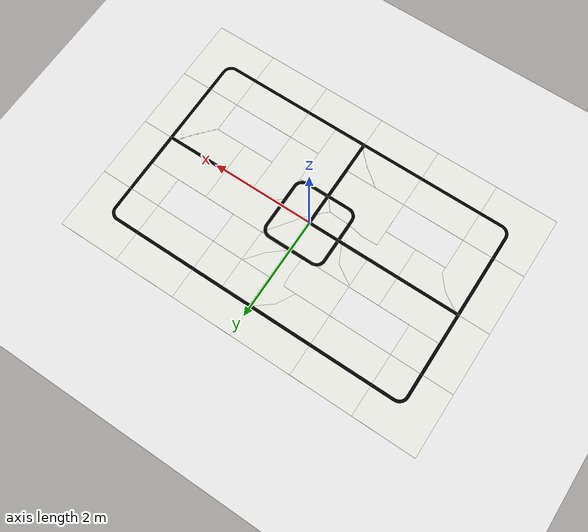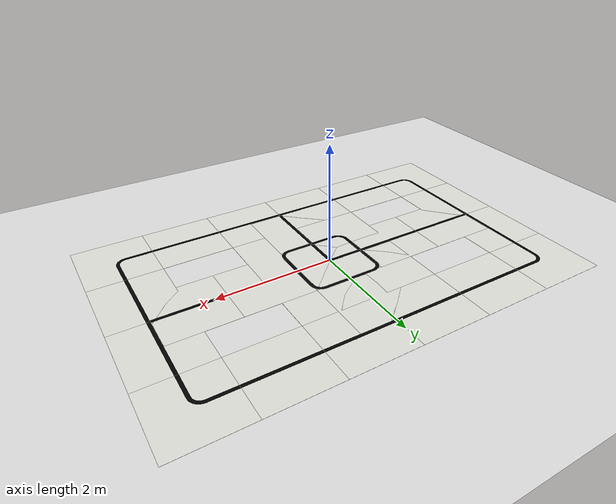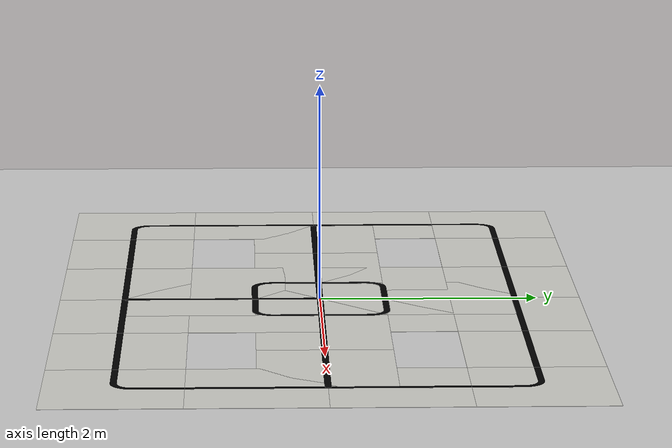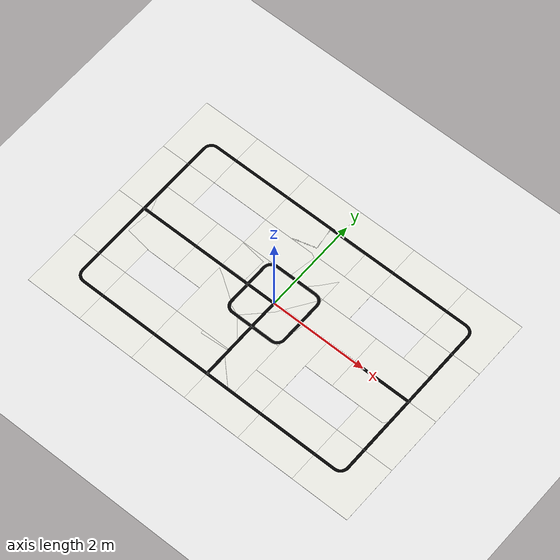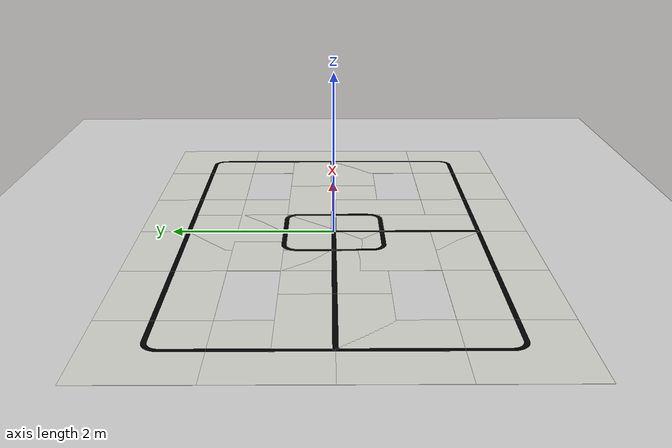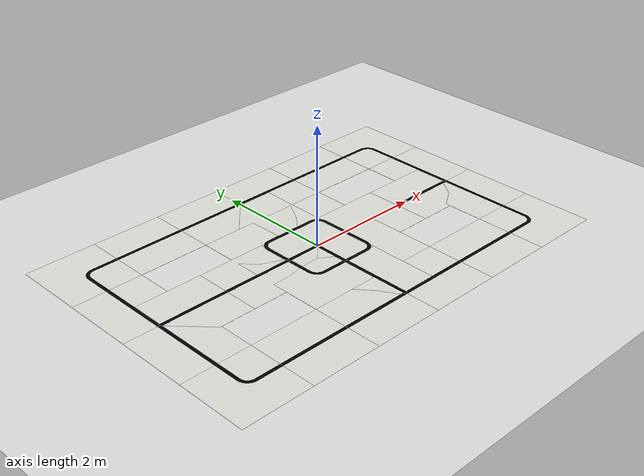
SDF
<sdf version='1.7'>
  <world name='default'>
    <!-- Iluminacao Zenital Sem Sombras (Piso Claro e Linhas Pretas de Alto Contraste) -->
    <light name='sun' type='directional'>
      <cast_shadows>0</cast_shadows>
      <pose>0 0 20 0 0 0</pose>
      <diffuse>0.95 0.95 0.95 1</diffuse>
      <specular>0.05 0.05 0.05 1</specular>
      <attenuation>
        <range>1000</range>
        <constant>0.9</constant>
        <linear>0.01</linear>
        <quadratic>0.001</quadratic>
      </attenuation>
      <direction>0 0 -1</direction>
    </light>

    <!-- Fundo Branco Total (Sky / Horizon) -->
    <scene>
      <ambient>0.95 0.95 0.95 1</ambient>
      <background>1 1 1 1</background>
      <shadows>0</shadows>
      <grid>0</grid>
    </scene>

    <!-- Chao Branco Total (Gazebo/White) para Contraste Maximo com as Linhas Pretas -->
    <model name='ground_plane'>
      <static>1</static>
      <link name='link'>
        <collision name='collision'>
          <geometry>
            <plane>
              <normal>0 0 1</normal>
              <size>200 200</size>
            </plane>
          </geometry>
          <surface>
            <contact><collide_bitmask>65535</collide_bitmask><ode/></contact>
            <friction>
              <ode><mu>100</mu><mu2>50</mu2></ode>
              <torsional><ode/></torsional>
            </friction>
            <bounce/>
          </surface>
        </collision>
        <visual name='visual'>
          <cast_shadows>0</cast_shadows>
          <geometry>
            <plane>
              <normal>0 0 1</normal>
              <size>200 200</size>
            </plane>
          </geometry>
          <material>
            <script>
              <uri>file://media/materials/scripts/gazebo.material</uri>
              <name>Gazebo/White</name>
            </script>
            <ambient>1 1 1 1</ambient>
            <diffuse>1 1 1 1</diffuse>
            <specular>0.05 0.05 0.05 1</specular>
          </material>
        </visual>
      </link>
    </model>

    <gravity>0 0 -9.8</gravity>
    <magnetic_field>6e-06 2.3e-05 -4.2e-05</magnetic_field>
    <atmosphere type='adiabatic'/>
    <physics type='ode'>
      <max_step_size>0.001</max_step_size>
      <real_time_factor>1</real_time_factor>
      <real_time_update_rate>1000</real_time_update_rate>
    </physics>
    <audio><device>none</device></audio>

    <model name='tile_top_1'>
      <static>1</static>
      <link name='link'>
        <visual name='visual'>
          <pose>0 0 0 1.5708 -0 0</pose>
          <geometry>
            <mesh>
              <uri>/workspace/tiles/tile-reta/meshes/tile_reta.dae</uri>
              <scale>4.0 1 4.0</scale>
            </mesh>
          </geometry>
        </visual>
        <collision name='collision'>
          <geometry>
            <box>
              <size>1.20 1.20 0.003</size>
            </box>
          </geometry>
          <surface>
            <contact><ode/></contact>
            <friction>
              <ode><mu>100</mu><mu2>50</mu2></ode>
              <torsional><ode/></torsional>
            </friction>
          </surface>
        </collision>
      </link>
      <pose>-2.4000 2.4000 0.0010 0.0000 0.0000 0.000000</pose>
    </model>

    <model name='tile_top_2'>
      <static>1</static>
      <link name='link'>
        <visual name='visual'>
          <pose>0 0 0 1.5708 -0 0</pose>
          <geometry>
            <mesh>
              <uri>/workspace/tiles/tile-reta/meshes/tile_reta.dae</uri>
              <scale>4.0 1 4.0</scale>
            </mesh>
          </geometry>
        </visual>
        <collision name='collision'>
          <geometry>
            <box>
              <size>1.20 1.20 0.003</size>
            </box>
          </geometry>
          <surface>
            <contact><ode/></contact>
            <friction>
              <ode><mu>100</mu><mu2>50</mu2></ode>
              <torsional><ode/></torsional>
            </friction>
          </surface>
        </collision>
      </link>
      <pose>-1.2000 2.4000 0.0010 0.0000 0.0000 0.000000</pose>
    </model>

    <model name='tile_top_3'>
      <static>1</static>
      <link name='link'>
        <visual name='visual'>
          <pose>0 0 0 1.5708 -0 0</pose>
          <geometry>
            <mesh>
              <uri>/workspace/tiles/tile-reta/meshes/tile_reta.dae</uri>
              <scale>4.0 1 4.0</scale>
            </mesh>
          </geometry>
        </visual>
        <collision name='collision'>
          <geometry>
            <box>
              <size>1.20 1.20 0.003</size>
            </box>
          </geometry>
          <surface>
            <contact><ode/></contact>
            <friction>
              <ode><mu>100</mu><mu2>50</mu2></ode>
              <torsional><ode/></torsional>
            </friction>
          </surface>
        </collision>
      </link>
      <pose>0.0000 2.4000 0.0010 0.0000 0.0000 0.000000</pose>
    </model>

    <model name='tile_top_4'>
      <static>1</static>
      <link name='link'>
        <visual name='visual'>
          <pose>0 0 0 1.5708 -0 0</pose>
          <geometry>
            <mesh>
              <uri>/workspace/tiles/tile-reta/meshes/tile_reta.dae</uri>
              <scale>4.0 1 4.0</scale>
            </mesh>
          </geometry>
        </visual>
        <collision name='collision'>
          <geometry>
            <box>
              <size>1.20 1.20 0.003</size>
            </box>
          </geometry>
          <surface>
            <contact><ode/></contact>
            <friction>
              <ode><mu>100</mu><mu2>50</mu2></ode>
              <torsional><ode/></torsional>
            </friction>
          </surface>
        </collision>
      </link>
      <pose>1.2000 2.4000 0.0010 0.0000 0.0000 0.000000</pose>
    </model>

    <model name='tile_curva_tr'>
      <static>1</static>
      <link name='link'>
        <visual name='visual'>
          <pose>0 0 0 1.5708 -0 0</pose>
          <geometry>
            <mesh>
              <uri>/workspace/tiles/tile-curva/meshes/tile_curva.dae</uri>
              <scale>4.0 1 4.0</scale>
            </mesh>
          </geometry>
        </visual>
        <collision name='collision'>
          <geometry>
            <box>
              <size>1.20 1.20 0.003</size>
            </box>
          </geometry>
          <surface>
            <contact><ode/></contact>
            <friction>
              <ode><mu>100</mu><mu2>50</mu2></ode>
              <torsional><ode/></torsional>
            </friction>
          </surface>
        </collision>
      </link>
      <pose>2.4000 2.4000 0.0010 0.0000 0.0000 0.000000</pose>
    </model>

    <model name='tile_right_1'>
      <static>1</static>
      <link name='link'>
        <visual name='visual'>
          <pose>0 0 0 1.5708 -0 0</pose>
          <geometry>
            <mesh>
              <uri>/workspace/tiles/tile-reta/meshes/tile_reta.dae</uri>
              <scale>4.0 1 4.0</scale>
            </mesh>
          </geometry>
        </visual>
        <collision name='collision'>
          <geometry>
            <box>
              <size>1.20 1.20 0.003</size>
            </box>
          </geometry>
          <surface>
            <contact><ode/></contact>
            <friction>
              <ode><mu>100</mu><mu2>50</mu2></ode>
              <torsional><ode/></torsional>
            </friction>
          </surface>
        </collision>
      </link>
      <pose>3.6000 1.2000 0.0010 0.0000 0.0000 -1.570796</pose>
    </model>

    <model name='tile_right_2'>
      <static>1</static>
      <link name='link'>
        <visual name='visual'>
          <pose>0 0 0 1.5708 -0 0</pose>
          <geometry>
            <mesh>
              <uri>/workspace/tiles/tile-reta/meshes/tile_reta.dae</uri>
              <scale>4.0 1 4.0</scale>
            </mesh>
          </geometry>
        </visual>
        <collision name='collision'>
          <geometry>
            <box>
              <size>1.20 1.20 0.003</size>
            </box>
          </geometry>
          <surface>
            <contact><ode/></contact>
            <friction>
              <ode><mu>100</mu><mu2>50</mu2></ode>
              <torsional><ode/></torsional>
            </friction>
          </surface>
        </collision>
      </link>
      <pose>3.6000 0.0000 0.0010 0.0000 0.0000 -1.570796</pose>
    </model>

    <model name='tile_curva_br'>
      <static>1</static>
      <link name='link'>
        <visual name='visual'>
          <pose>0 0 0 1.5708 -0 0</pose>
          <geometry>
            <mesh>
              <uri>/workspace/tiles/tile-curva/meshes/tile_curva.dae</uri>
              <scale>4.0 1 4.0</scale>
            </mesh>
          </geometry>
        </visual>
        <collision name='collision'>
          <geometry>
            <box>
              <size>1.20 1.20 0.003</size>
            </box>
          </geometry>
          <surface>
            <contact><ode/></contact>
            <friction>
              <ode><mu>100</mu><mu2>50</mu2></ode>
              <torsional><ode/></torsional>
            </friction>
          </surface>
        </collision>
      </link>
      <pose>3.6000 -1.2000 0.0010 0.0000 0.0000 -1.570796</pose>
    </model>

    <model name='tile_bottom_1'>
      <static>1</static>
      <link name='link'>
        <visual name='visual'>
          <pose>0 0 0 1.5708 -0 0</pose>
          <geometry>
            <mesh>
              <uri>/workspace/tiles/tile-reta/meshes/tile_reta.dae</uri>
              <scale>4.0 1 4.0</scale>
            </mesh>
          </geometry>
        </visual>
        <collision name='collision'>
          <geometry>
            <box>
              <size>1.20 1.20 0.003</size>
            </box>
          </geometry>
          <surface>
            <contact><ode/></contact>
            <friction>
              <ode><mu>100</mu><mu2>50</mu2></ode>
              <torsional><ode/></torsional>
            </friction>
          </surface>
        </collision>
      </link>
      <pose>2.4000 -2.4000 0.0010 0.0000 0.0000 3.141593</pose>
    </model>

    <model name='tile_bottom_2'>
      <static>1</static>
      <link name='link'>
        <visual name='visual'>
          <pose>0 0 0 1.5708 -0 0</pose>
          <geometry>
            <mesh>
              <uri>/workspace/tiles/tile-reta/meshes/tile_reta.dae</uri>
              <scale>4.0 1 4.0</scale>
            </mesh>
          </geometry>
        </visual>
        <collision name='collision'>
          <geometry>
            <box>
              <size>1.20 1.20 0.003</size>
            </box>
          </geometry>
          <surface>
            <contact><ode/></contact>
            <friction>
              <ode><mu>100</mu><mu2>50</mu2></ode>
              <torsional><ode/></torsional>
            </friction>
          </surface>
        </collision>
      </link>
      <pose>1.2000 -2.4000 0.0010 0.0000 0.0000 3.141593</pose>
    </model>

    <model name='tile_bottom_3'>
      <static>1</static>
      <link name='link'>
        <visual name='visual'>
          <pose>0 0 0 1.5708 -0 0</pose>
          <geometry>
            <mesh>
              <uri>/workspace/tiles/tile-reta/meshes/tile_reta.dae</uri>
              <scale>4.0 1 4.0</scale>
            </mesh>
          </geometry>
        </visual>
        <collision name='collision'>
          <geometry>
            <box>
              <size>1.20 1.20 0.003</size>
            </box>
          </geometry>
          <surface>
            <contact><ode/></contact>
            <friction>
              <ode><mu>100</mu><mu2>50</mu2></ode>
              <torsional><ode/></torsional>
            </friction>
          </surface>
        </collision>
      </link>
      <pose>0.0000 -2.4000 0.0010 0.0000 0.0000 3.141593</pose>
    </model>

    <model name='tile_bottom_4'>
      <static>1</static>
      <link name='link'>
        <visual name='visual'>
          <pose>0 0 0 1.5708 -0 0</pose>
          <geometry>
            <mesh>
              <uri>/workspace/tiles/tile-reta/meshes/tile_reta.dae</uri>
              <scale>4.0 1 4.0</scale>
            </mesh>
          </geometry>
        </visual>
        <collision name='collision'>
          <geometry>
            <box>
              <size>1.20 1.20 0.003</size>
            </box>
          </geometry>
          <surface>
            <contact><ode/></contact>
            <friction>
              <ode><mu>100</mu><mu2>50</mu2></ode>
              <torsional><ode/></torsional>
            </friction>
          </surface>
        </collision>
      </link>
      <pose>-1.2000 -2.4000 0.0010 0.0000 0.0000 3.141593</pose>
    </model>

    <model name='tile_curva_bl'>
      <static>1</static>
      <link name='link'>
        <visual name='visual'>
          <pose>0 0 0 1.5708 -0 0</pose>
          <geometry>
            <mesh>
              <uri>/workspace/tiles/tile-curva/meshes/tile_curva.dae</uri>
              <scale>4.0 1 4.0</scale>
            </mesh>
          </geometry>
        </visual>
        <collision name='collision'>
          <geometry>
            <box>
              <size>1.20 1.20 0.003</size>
            </box>
          </geometry>
          <surface>
            <contact><ode/></contact>
            <friction>
              <ode><mu>100</mu><mu2>50</mu2></ode>
              <torsional><ode/></torsional>
            </friction>
          </surface>
        </collision>
      </link>
      <pose>-2.4000 -2.4000 0.0010 0.0000 0.0000 3.141593</pose>
    </model>

    <model name='tile_left_1'>
      <static>1</static>
      <link name='link'>
        <visual name='visual'>
          <pose>0 0 0 1.5708 -0 0</pose>
          <geometry>
            <mesh>
              <uri>/workspace/tiles/tile-reta/meshes/tile_reta.dae</uri>
              <scale>4.0 1 4.0</scale>
            </mesh>
          </geometry>
        </visual>
        <collision name='collision'>
          <geometry>
            <box>
              <size>1.20 1.20 0.003</size>
            </box>
          </geometry>
          <surface>
            <contact><ode/></contact>
            <friction>
              <ode><mu>100</mu><mu2>50</mu2></ode>
              <torsional><ode/></torsional>
            </friction>
          </surface>
        </collision>
      </link>
      <pose>-3.6000 -1.2000 0.0010 0.0000 0.0000 1.570796</pose>
    </model>

    <model name='tile_left_2'>
      <static>1</static>
      <link name='link'>
        <visual name='visual'>
          <pose>0 0 0 1.5708 -0 0</pose>
          <geometry>
            <mesh>
              <uri>/workspace/tiles/tile-reta/meshes/tile_reta.dae</uri>
              <scale>4.0 1 4.0</scale>
            </mesh>
          </geometry>
        </visual>
        <collision name='collision'>
          <geometry>
            <box>
              <size>1.20 1.20 0.003</size>
            </box>
          </geometry>
          <surface>
            <contact><ode/></contact>
            <friction>
              <ode><mu>100</mu><mu2>50</mu2></ode>
              <torsional><ode/></torsional>
            </friction>
          </surface>
        </collision>
      </link>
      <pose>-3.6000 0.0000 0.0010 0.0000 0.0000 1.570796</pose>
    </model>

    <model name='tile_curva_tl'>
      <static>1</static>
      <link name='link'>
        <visual name='visual'>
          <pose>0 0 0 1.5708 -0 0</pose>
          <geometry>
            <mesh>
              <uri>/workspace/tiles/tile-curva/meshes/tile_curva.dae</uri>
              <scale>4.0 1 4.0</scale>
            </mesh>
          </geometry>
        </visual>
        <collision name='collision'>
          <geometry>
            <box>
              <size>1.20 1.20 0.003</size>
            </box>
          </geometry>
          <surface>
            <contact><ode/></contact>
            <friction>
              <ode><mu>100</mu><mu2>50</mu2></ode>
              <torsional><ode/></torsional>
            </friction>
          </surface>
        </collision>
      </link>
      <pose>-3.6000 1.2000 0.0010 0.0000 0.0000 1.570796</pose>
    </model>

    <model name='tile_mid_h1'>
      <static>1</static>
      <link name='link'>
        <visual name='visual'>
          <pose>0 0 0 1.5708 -0 0</pose>
          <geometry>
            <mesh>
              <uri>/workspace/tiles/tile-reta/meshes/tile_reta.dae</uri>
              <scale>4.0 1 4.0</scale>
            </mesh>
          </geometry>
        </visual>
        <collision name='collision'>
          <geometry>
            <box>
              <size>1.20 1.20 0.003</size>
            </box>
          </geometry>
          <surface>
            <contact><ode/></contact>
            <friction>
              <ode><mu>100</mu><mu2>50</mu2></ode>
              <torsional><ode/></torsional>
            </friction>
          </surface>
        </collision>
      </link>
      <pose>-3.0000 0.6000 0.0010 0.0000 0.0000 0.000000</pose>
    </model>

    <model name='tile_mid_h2'>
      <static>1</static>
      <link name='link'>
        <visual name='visual'>
          <pose>0 0 0 1.5708 -0 0</pose>
          <geometry>
            <mesh>
              <uri>/workspace/tiles/tile-reta/meshes/tile_reta.dae</uri>
              <scale>4.0 1 4.0</scale>
            </mesh>
          </geometry>
        </visual>
        <collision name='collision'>
          <geometry>
            <box>
              <size>1.20 1.20 0.003</size>
            </box>
          </geometry>
          <surface>
            <contact><ode/></contact>
            <friction>
              <ode><mu>100</mu><mu2>50</mu2></ode>
              <torsional><ode/></torsional>
            </friction>
          </surface>
        </collision>
      </link>
      <pose>-1.8000 0.6000 0.0010 0.0000 0.0000 0.000000</pose>
    </model>

    <model name='tile_mid_h3'>
      <static>1</static>
      <link name='link'>
        <visual name='visual'>
          <pose>0 0 0 1.5708 -0 0</pose>
          <geometry>
            <mesh>
              <uri>/workspace/tiles/tile-reta/meshes/tile_reta.dae</uri>
              <scale>4.0 1 4.0</scale>
            </mesh>
          </geometry>
        </visual>
        <collision name='collision'>
          <geometry>
            <box>
              <size>1.20 1.20 0.003</size>
            </box>
          </geometry>
          <surface>
            <contact><ode/></contact>
            <friction>
              <ode><mu>100</mu><mu2>50</mu2></ode>
              <torsional><ode/></torsional>
            </friction>
          </surface>
        </collision>
      </link>
      <pose>-0.6000 0.6000 0.0010 0.0000 0.0000 0.000000</pose>
    </model>

    <model name='tile_mid_h4'>
      <static>1</static>
      <link name='link'>
        <visual name='visual'>
          <pose>0 0 0 1.5708 -0 0</pose>
          <geometry>
            <mesh>
              <uri>/workspace/tiles/tile-reta/meshes/tile_reta.dae</uri>
              <scale>4.0 1 4.0</scale>
            </mesh>
          </geometry>
        </visual>
        <collision name='collision'>
          <geometry>
            <box>
              <size>1.20 1.20 0.003</size>
            </box>
          </geometry>
          <surface>
            <contact><ode/></contact>
            <friction>
              <ode><mu>100</mu><mu2>50</mu2></ode>
              <torsional><ode/></torsional>
            </friction>
          </surface>
        </collision>
      </link>
      <pose>0.6000 0.6000 0.0010 0.0000 0.0000 0.000000</pose>
    </model>

    <model name='tile_mid_h5'>
      <static>1</static>
      <link name='link'>
        <visual name='visual'>
          <pose>0 0 0 1.5708 -0 0</pose>
          <geometry>
            <mesh>
              <uri>/workspace/tiles/tile-reta/meshes/tile_reta.dae</uri>
              <scale>4.0 1 4.0</scale>
            </mesh>
          </geometry>
        </visual>
        <collision name='collision'>
          <geometry>
            <box>
              <size>1.20 1.20 0.003</size>
            </box>
          </geometry>
          <surface>
            <contact><ode/></contact>
            <friction>
              <ode><mu>100</mu><mu2>50</mu2></ode>
              <torsional><ode/></torsional>
            </friction>
          </surface>
        </collision>
      </link>
      <pose>1.8000 0.6000 0.0010 0.0000 0.0000 0.000000</pose>
    </model>

    <model name='tile_mid_v1'>
      <static>1</static>
      <link name='link'>
        <visual name='visual'>
          <pose>0 0 0 1.5708 -0 0</pose>
          <geometry>
            <mesh>
              <uri>/workspace/tiles/tile-reta/meshes/tile_reta.dae</uri>
              <scale>4.0 1 4.0</scale>
            </mesh>
          </geometry>
        </visual>
        <collision name='collision'>
          <geometry>
            <box>
              <size>1.20 1.20 0.003</size>
            </box>
          </geometry>
          <surface>
            <contact><ode/></contact>
            <friction>
              <ode><mu>100</mu><mu2>50</mu2></ode>
              <torsional><ode/></torsional>
            </friction>
          </surface>
        </collision>
      </link>
      <pose>0.6000 1.8000 0.0010 0.0000 0.0000 -1.570796</pose>
    </model>

    <model name='tile_mid_v2'>
      <static>1</static>
      <link name='link'>
        <visual name='visual'>
          <pose>0 0 0 1.5708 -0 0</pose>
          <geometry>
            <mesh>
              <uri>/workspace/tiles/tile-reta/meshes/tile_reta.dae</uri>
              <scale>4.0 1 4.0</scale>
            </mesh>
          </geometry>
        </visual>
        <collision name='collision'>
          <geometry>
            <box>
              <size>1.20 1.20 0.003</size>
            </box>
          </geometry>
          <surface>
            <contact><ode/></contact>
            <friction>
              <ode><mu>100</mu><mu2>50</mu2></ode>
              <torsional><ode/></torsional>
            </friction>
          </surface>
        </collision>
      </link>
      <pose>0.6000 0.6000 0.0010 0.0000 0.0000 -1.570796</pose>
    </model>

    <model name='tile_mid_v3'>
      <static>1</static>
      <link name='link'>
        <visual name='visual'>
          <pose>0 0 0 1.5708 -0 0</pose>
          <geometry>
            <mesh>
              <uri>/workspace/tiles/tile-reta/meshes/tile_reta.dae</uri>
              <scale>4.0 1 4.0</scale>
            </mesh>
          </geometry>
        </visual>
        <collision name='collision'>
          <geometry>
            <box>
              <size>1.20 1.20 0.003</size>
            </box>
          </geometry>
          <surface>
            <contact><ode/></contact>
            <friction>
              <ode><mu>100</mu><mu2>50</mu2></ode>
              <torsional><ode/></torsional>
            </friction>
          </surface>
        </collision>
      </link>
      <pose>0.6000 -0.6000 0.0010 0.0000 0.0000 -1.570796</pose>
    </model>

    <model name='tile_bypass_ne'>
      <static>1</static>
      <link name='link'>
        <visual name='visual'>
          <pose>0 0 0 1.5708 -0 0</pose>
          <geometry>
            <mesh>
              <uri>/workspace/tiles/tile-curva/meshes/tile_curva.dae</uri>
              <scale>4.0 1 4.0</scale>
            </mesh>
          </geometry>
        </visual>
        <collision name='collision'>
          <geometry>
            <box>
              <size>1.20 1.20 0.003</size>
            </box>
          </geometry>
          <surface>
            <contact><ode/></contact>
            <friction>
              <ode><mu>100</mu><mu2>50</mu2></ode>
              <torsional><ode/></torsional>
            </friction>
          </surface>
        </collision>
      </link>
      <pose>0.0000 1.2000 0.0010 0.0000 0.0000 0.000000</pose>
    </model>

    <model name='tile_bypass_se'>
      <static>1</static>
      <link name='link'>
        <visual name='visual'>
          <pose>0 0 0 1.5708 -0 0</pose>
          <geometry>
            <mesh>
              <uri>/workspace/tiles/tile-curva/meshes/tile_curva.dae</uri>
              <scale>4.0 1 4.0</scale>
            </mesh>
          </geometry>
        </visual>
        <collision name='collision'>
          <geometry>
            <box>
              <size>1.20 1.20 0.003</size>
            </box>
          </geometry>
          <surface>
            <contact><ode/></contact>
            <friction>
              <ode><mu>100</mu><mu2>50</mu2></ode>
              <torsional><ode/></torsional>
            </friction>
          </surface>
        </collision>
      </link>
      <pose>1.2000 0.0000 0.0010 0.0000 0.0000 -1.570796</pose>
    </model>

    <model name='tile_bypass_sw'>
      <static>1</static>
      <link name='link'>
        <visual name='visual'>
          <pose>0 0 0 1.5708 -0 0</pose>
          <geometry>
            <mesh>
              <uri>/workspace/tiles/tile-curva/meshes/tile_curva.dae</uri>
              <scale>4.0 1 4.0</scale>
            </mesh>
          </geometry>
        </visual>
        <collision name='collision'>
          <geometry>
            <box>
              <size>1.20 1.20 0.003</size>
            </box>
          </geometry>
          <surface>
            <contact><ode/></contact>
            <friction>
              <ode><mu>100</mu><mu2>50</mu2></ode>
              <torsional><ode/></torsional>
            </friction>
          </surface>
        </collision>
      </link>
      <pose>0.0000 -1.2000 0.0010 0.0000 0.0000 3.141593</pose>
    </model>

    <model name='tile_bypass_nw'>
      <static>1</static>
      <link name='link'>
        <visual name='visual'>
          <pose>0 0 0 1.5708 -0 0</pose>
          <geometry>
            <mesh>
              <uri>/workspace/tiles/tile-curva/meshes/tile_curva.dae</uri>
              <scale>4.0 1 4.0</scale>
            </mesh>
          </geometry>
        </visual>
        <collision name='collision'>
          <geometry>
            <box>
              <size>1.20 1.20 0.003</size>
            </box>
          </geometry>
          <surface>
            <contact><ode/></contact>
            <friction>
              <ode><mu>100</mu><mu2>50</mu2></ode>
              <torsional><ode/></torsional>
            </friction>
          </surface>
        </collision>
      </link>
      <pose>-1.2000 0.0000 0.0010 0.0000 0.0000 1.570796</pose>
    </model>

    <gui fullscreen='0'>
      <camera name='user_camera'>
        <pose>0.0 -1.0 10.0 0 1.5708 1.5708</pose>
        <view_controller>orbit</view_controller>
        <projection_type>perspective</projection_type>
      </camera>
    </gui>
  </world>
</sdf>
